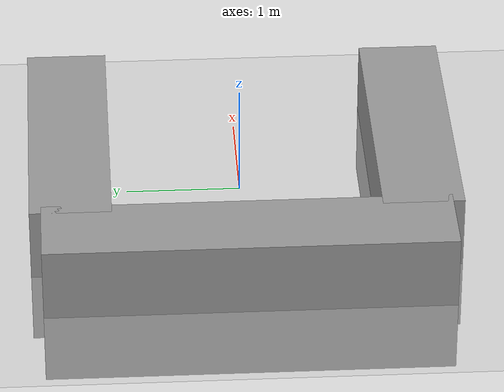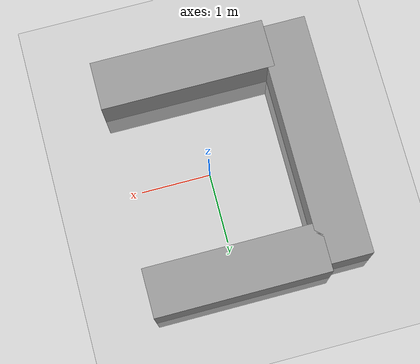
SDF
<sdf version="1.4">
 <world name="myworld">
  <include><uri>model://sun</uri></include>
  <include><uri>model://ground_plane</uri></include>
  <model name="box_1">
   <pose>-1.5 0 0 0 -0 0</pose>
   <link name="link1">
    <inertial>
     <mass>1</mass>
     <inertia><ixx>1</ixx><ixy>0</ixy><ixz>0</ixz><iyy>1</iyy><iyz>0</iyz><izz>1</izz></inertia>
    </inertial>
    <collision name="collision"><geometry><box><size>0.7 3.5 1.3</size></box></geometry></collision>
    <visual name="visual">
     <geometry><box><size>0.7 3.5 1.3</size></box></geometry>
     <material>
      <script><uri>file://media/materials/scripts/gazebo.material</uri><name>Gazebo/Grey</name></script>
     </material>
    </visual>
    <velocity_decay><linear>0</linear><angular>0</angular></velocity_decay>
   </link>
   <static>0</static>
  </model>
  <model name="box_2">
   <pose>0 1.5 0 0 0 0</pose>
   <link name="link2">
    <inertial>
     <mass>1</mass>
     <inertia><ixx>1</ixx><ixy>0</ixy><ixz>0</ixz><iyy>1</iyy><iyz>0</iyz><izz>1</izz></inertia>
    </inertial>
    <collision name="collision"><geometry><box><size>2.5 0.7 1.3</size></box></geometry></collision>
    <visual name="visual">
     <geometry><box><size>2.5 0.7 1.3</size></box></geometry>
     <material>
      <script><uri>file://media/materials/scripts/gazebo.material</uri><name>Gazebo/Grey</name></script>
     </material>
    </visual>
    <velocity_decay><linear>0</linear><angular>0</angular></velocity_decay>
   </link>
   <static>0</static>
  </model>
  <model name="box_3">
   <pose>0 -1.5 0 0 0 0</pose>
   <link name="link3">
    <inertial>
     <mass>1</mass>
     <inertia><ixx>1</ixx><ixy>0</ixy><ixz>0</ixz><iyy>1</iyy><iyz>0</iyz><izz>1</izz></inertia>
    </inertial>
    <collision name="collision"><geometry><box><size>2.5 0.7 1.3</size></box></geometry></collision>
    <visual name="visual">
     <geometry><box><size>2.5 0.7 1.3</size></box></geometry>
     <material>
      <script><uri>file://media/materials/scripts/gazebo.material</uri><name>Gazebo/Grey</name></script>
     </material>
    </visual>
    <velocity_decay><linear>0</linear><angular>0</angular></velocity_decay>
   </link>
   <static>0</static>
  </model>
 </world>
</sdf>
